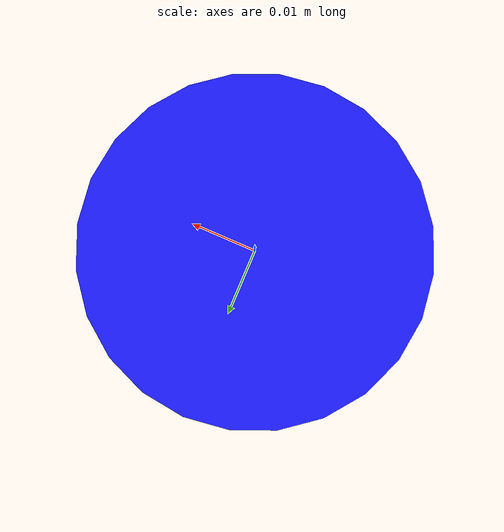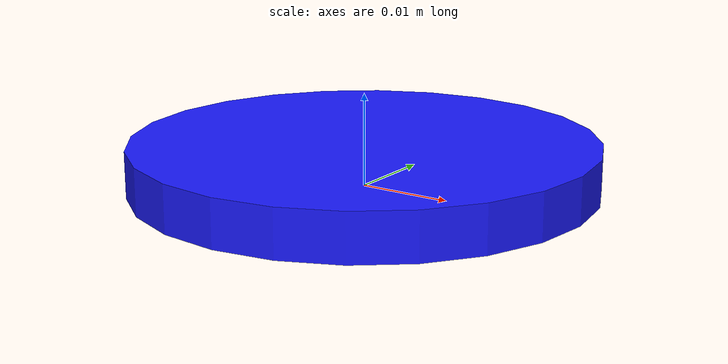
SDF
<?xml version='1.0'?>
<sdf version='1.7'>
  <model name='template_disc'>
    <link name='base_link'>
      <inertial>
        <mass>0.05</mass>
        <inertia>
          <ixx>7.91e-06</ixx>
          <ixy>0</ixy>
          <ixz>0</ixz>
          <iyy>7.91e-06</iyy>
          <iyz>0</iyz>
          <izz>1.56e-05</izz>
        </inertia>
        <pose>0 0 0.0025 0 0 0</pose>
      </inertial>
      <pose>0 0 0 0 0 0</pose>
      <visual name='visual'>
        <pose>0 0 0.0025 0 0 0</pose>
        <geometry>
            <cylinder>
              <radius>0.025</radius>
              <length>0.005</length>
            </cylinder>
        </geometry>
        <material>
          <diffuse>0.1 0.1 1 1</diffuse>
        </material>
      </visual>
      <collision name='collision'>
        <pose>0 0 0.0025 0 0 0</pose>
        <geometry>
            <cylinder>
              <radius>0.025</radius>
              <length>0.005</length>
            </cylinder>
        </geometry>
      </collision>
      <collision name='ball1'>
        <pose>-0.0177 -0.0177 0.0 0 0 0</pose>
        <geometry>
          <sphere>
            <radius>1e-7</radius>
          </sphere>
        </geometry>
      </collision>
      <collision name='ball2'>
        <pose>0.0177 -0.0177 0.0 0 0 0</pose>
        <geometry>
          <sphere>
            <radius>1e-7</radius>
          </sphere>
        </geometry>
      </collision>
      <collision name='ball3'>
        <pose>-0.0177 0.0177 0.0 0 0 0</pose>
        <geometry>
          <sphere>
            <radius>1e-7</radius>
          </sphere>
        </geometry>
      </collision>
      <collision name='ball4'>
        <pose>0.0177 0.0177 0.0 0 0 0</pose>
        <geometry>
          <sphere>
            <radius>1e-7</radius>
          </sphere>
        </geometry>
      </collision>
    </link>
  </model>
</sdf>
